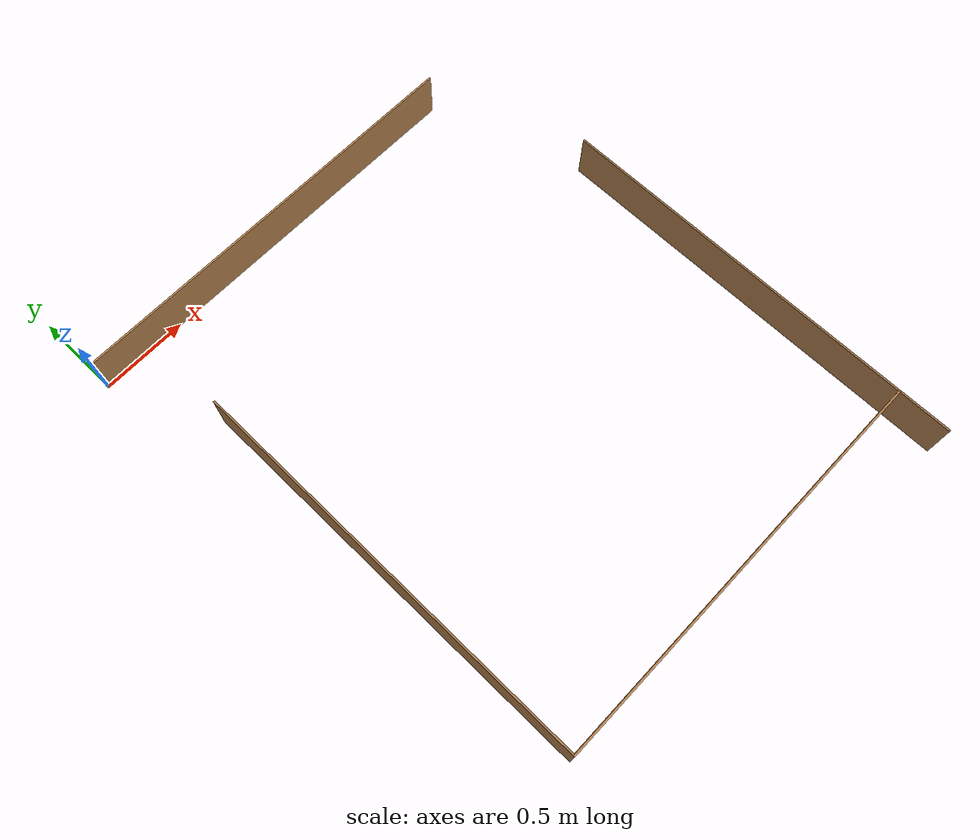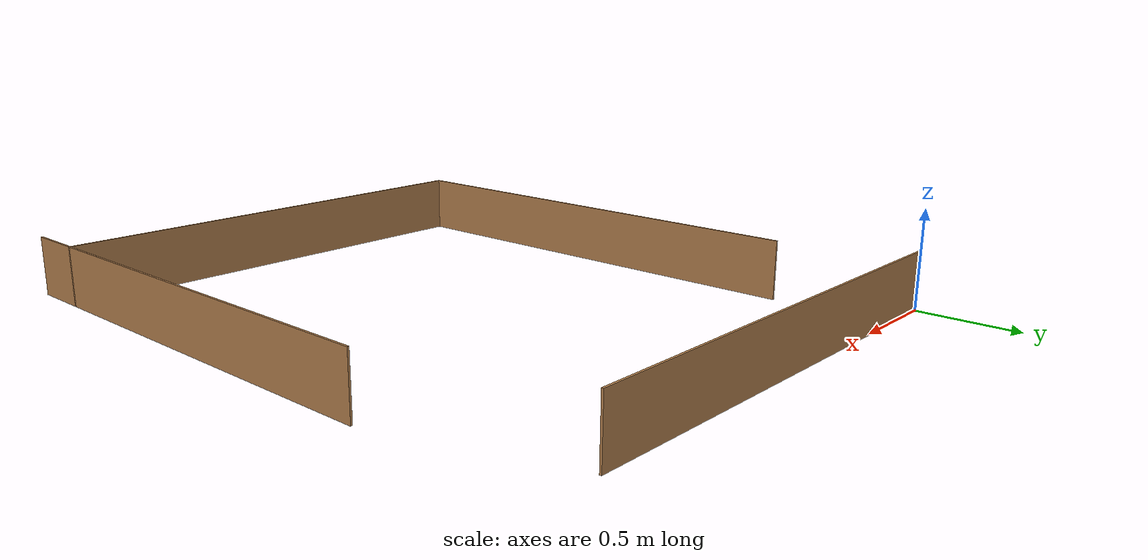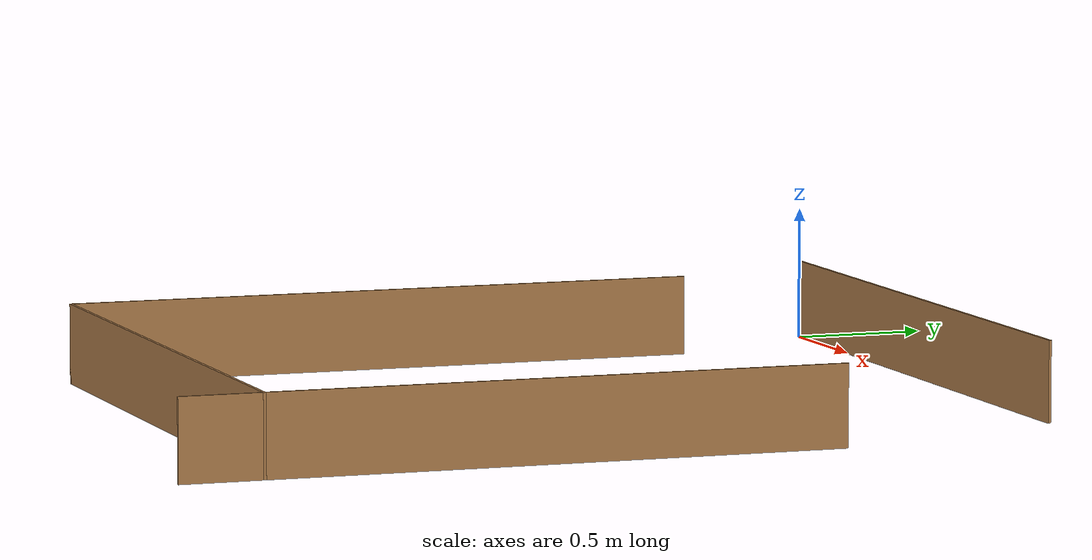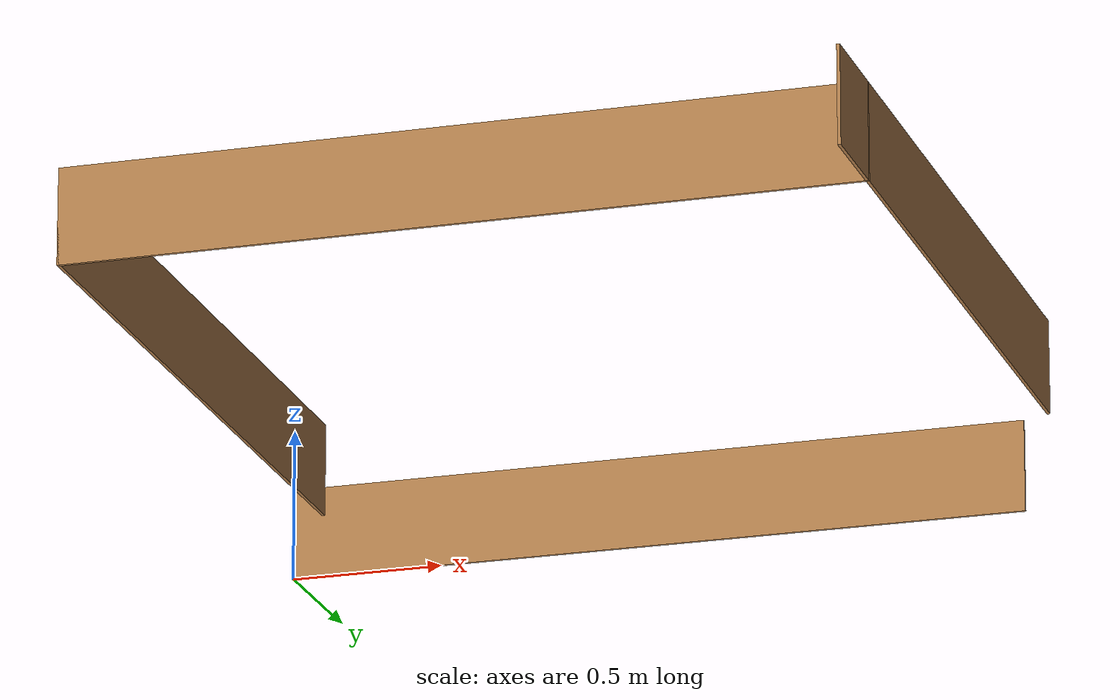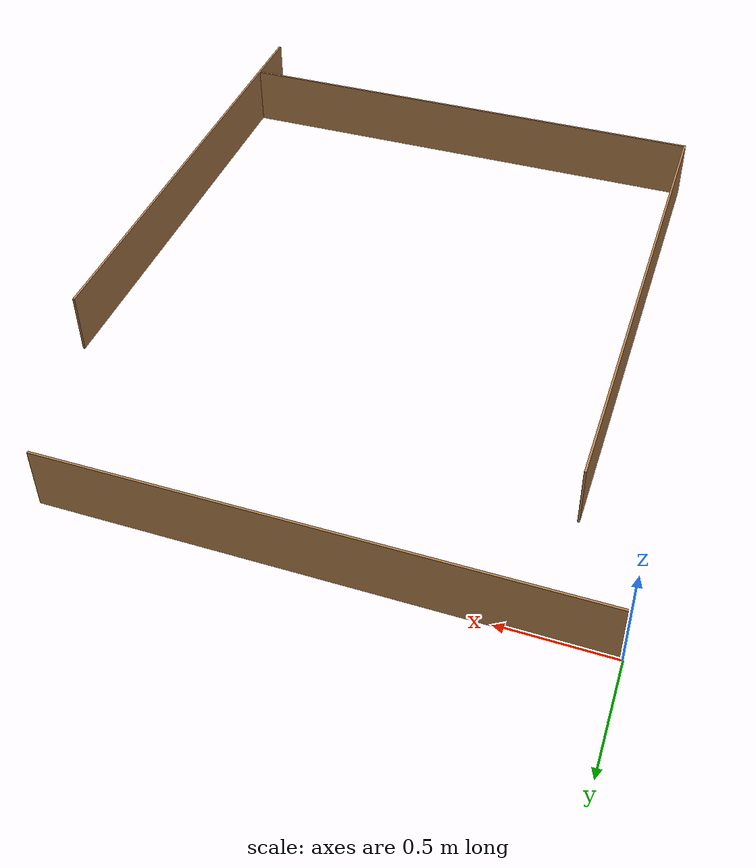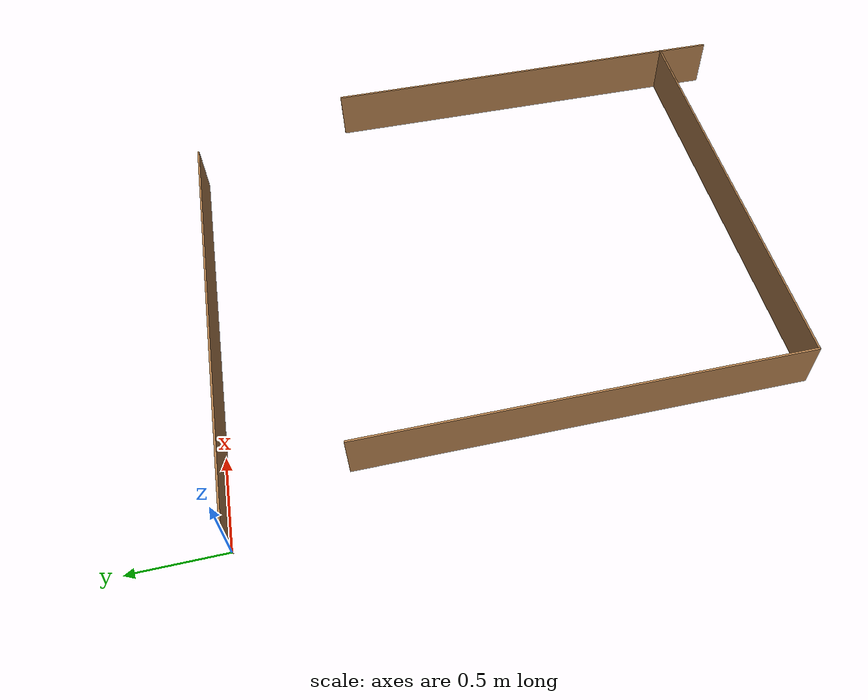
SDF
<?xml version='1.0'?>
<sdf version='1.7'>
  <model name='world1'>
    <pose>1.36 -1.66 0 0 -0 0</pose>
    <link name='Wall_44'>
      <collision name='Wall_44_Collision'>
        <geometry>
          <box>
            <size>2.43 0.01 0.3</size>
          </box>
        </geometry>
        <pose>0 0 0.15 0 -0 0</pose>
      </collision>
      <visual name='Wall_44_Visual'>
        <pose>0 0 0.15 0 -0 0</pose>
        <geometry>
          <box>
            <size>2.43 0.01 0.3</size>
          </box>
        </geometry>
        <material>
          <script>
            <uri>file://media/materials/scripts/gazebo.material</uri>
            <name>Gazebo/Wood</name>
          </script>
          <ambient>1 1 1 1</ambient>
        </material>
        <meta>
          <layer>0</layer>
        </meta>
      </visual>
      <pose>-0.15 1.66 0 0 -0 0</pose>
    </link>
    <link name='Wall_47'>
      <collision name='Wall_47_Collision'>
        <geometry>
          <box>
            <size>2.43 0.01 0.3</size>
          </box>
        </geometry>
        <pose>0 0 0.15 0 -0 0</pose>
      </collision>
      <visual name='Wall_47_Visual'>
        <pose>0 0 0.15 0 -0 0</pose>
        <geometry>
          <box>
            <size>2.43 0.01 0.3</size>
          </box>
        </geometry>
        <material>
          <script>
            <uri>file://media/materials/scripts/gazebo.material</uri>
            <name>Gazebo/Wood</name>
          </script>
          <ambient>1 1 1 1</ambient>
        </material>
        <meta>
          <layer>0</layer>
        </meta>
      </visual>
      <pose>-1.06 -0.15 0 0 -0 -1.5708</pose>
    </link>
    <link name='Wall_48'>
      <collision name='Wall_48_Collision'>
        <geometry>
          <box>
            <size>2.43 0.01 0.3</size>
          </box>
        </geometry>
        <pose>0 0 0.15 0 -0 0</pose>
      </collision>
      <visual name='Wall_48_Visual'>
        <pose>0 0 0.15 0 -0 0</pose>
        <geometry>
          <box>
            <size>2.43 0.01 0.3</size>
          </box>
        </geometry>
        <material>
          <script>
            <uri>file://media/materials/scripts/gazebo.material</uri>
            <name>Gazebo/Wood</name>
          </script>
          <ambient>1 1 1 1</ambient>
        </material>
        <meta>
          <layer>0</layer>
        </meta>
      </visual>
      <pose>0.15 -1.36 0 0 -0 0</pose>
    </link>
    <link name='Wall_50'>
      <collision name='Wall_50_Collision'>
        <geometry>
          <box>
            <size>2.43 0.01 0.3</size>
          </box>
        </geometry>
        <pose>0 0 0.15 0 -0 0</pose>
      </collision>
      <visual name='Wall_50_Visual'>
        <pose>0 0 0.15 0 -0 0</pose>
        <geometry>
          <box>
            <size>2.43 0.01 0.3</size>
          </box>
        </geometry>
        <material>
          <script>
            <uri>file://media/materials/scripts/gazebo.material</uri>
            <name>Gazebo/Wood</name>
          </script>
          <ambient>1 1 1 1</ambient>
        </material>
        <meta>
          <layer>0</layer>
        </meta>
      </visual>
      <pose>1.36 -0.45 0 0 -0 -1.5708</pose>
    </link>
    <static>1</static>
  </model>
</sdf>
